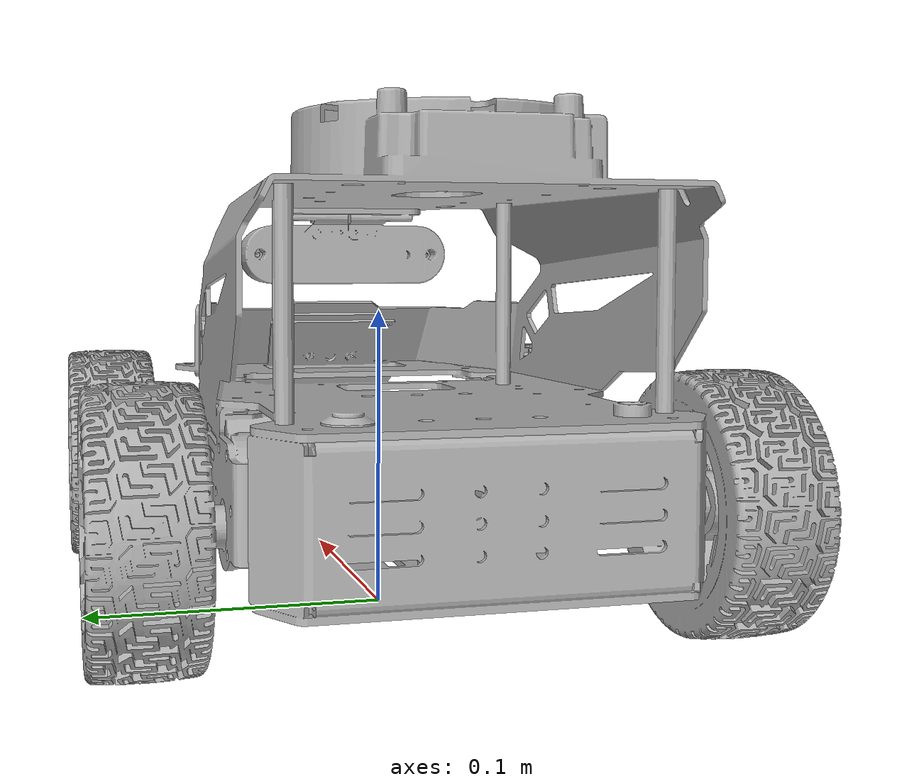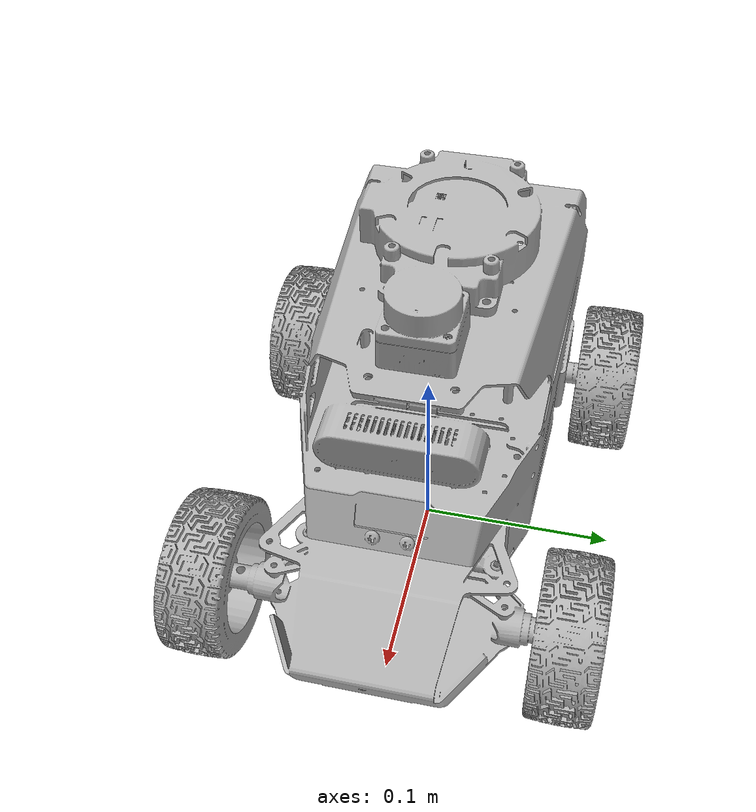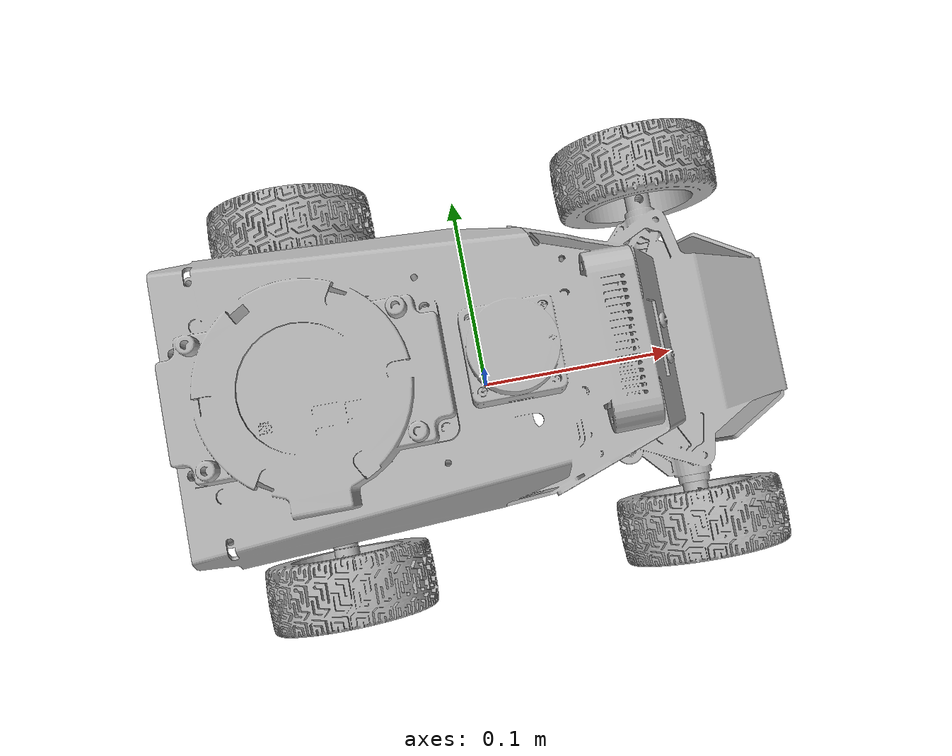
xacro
<?xml version="1.0" encoding="utf-8"?>
<robot name="car" xmlns:xacro="http://ros.org/wiki/xacro" >
  <link name="base_footprint"/>

  <joint name="base_joint" type="fixed">
    <parent link="base_footprint"/>
    <child link="base_link"/>
    <origin xyz="0.0 0.0 0.028" rpy="0 0 0"/>
  </joint>

  <link name="imu_link"/>

  <joint name="imu_joint" type="fixed">
    <parent link="base_link"/>
    <child link="imu_link"/>
    <origin xyz="0.04 -0.015 0.05" rpy="0 0 1.57"/>
  </joint>

  <link
    name="base_link">
    <inertial>
      <origin
        xyz="-0.0132151762477841 0.000229447110994733 0.0437668667969873"
        rpy="0 0 0" />
      <mass
        value="0.556763318161172" />
      <inertia
        ixx="0.000437925309078705"
        ixy="-9.08809720899858E-07"
        ixz="3.70200457919012E-05"
        iyy="0.000901865125007191"
        iyz="8.37677372114877E-10"
        izz="0.00107357991072818" />
    </inertial>
    <visual>
      <origin
        xyz="0 0 0"
        rpy="0 0 0" />
      <geometry>
        <mesh
          filename="package://rosorin_description/meshes/base_link_ack.stl" />
      </geometry>
      <material
        name="">
        <color
          rgba="0.7 0.7 0.7 1" />
      </material>
    </visual>
    <collision>
      <origin
        xyz="0 0 0"
        rpy="0 0 0" />
      <geometry>
        <mesh
          filename="package://rosorin_description/meshes/base_link_ack.stl" />
      </geometry>
    </collision>
  </link>

  <link name="lidar_frame"/>
  <joint
    name="lidar"
    type="fixed">
    <origin
      xyz="0.011476 7.415E-05 0.13641"
      rpy="0 0 0" />
    <parent
      link="base_link" />
    <child
      link="lidar_frame" />
    <axis
      xyz="0 0 0" />
  </joint>

  <link name="lidar_sim_frame" />
  <joint
    name="lidar_sim_frame_joint"
    type="fixed">
    <origin xyz="0 0 0" rpy="0 0 0" />
    <parent link="lidar_frame" />
    <child link="lidar_sim_frame" />
  </joint>

  <link name="camera_link0"/>

  <joint
    name="depth_camera"
    type="fixed">
    <origin
      xyz="0.057373 7.9091E-05 0.091864"
      rpy="0 0 0" />
    <parent
      link="base_link" />
    <child
      link="camera_link0" />
    <axis
      xyz="0 0 0" />
  </joint>

</robot>
